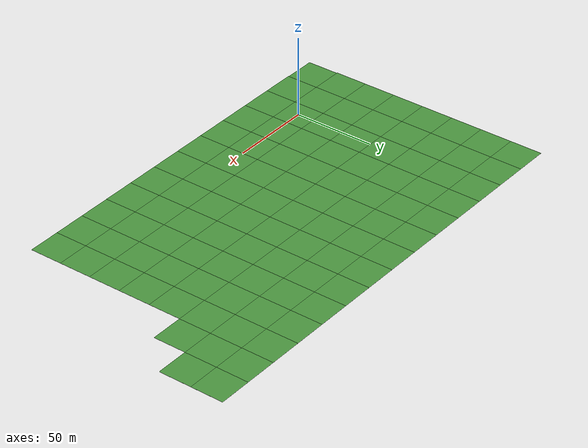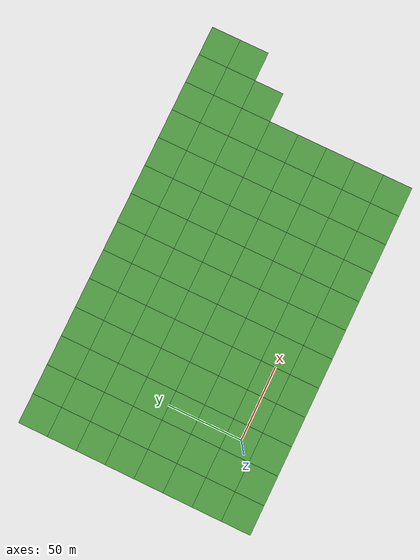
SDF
<?xml version='1.0'?>
<sdf version='1.4'>
  <model name='grass_plane'>
    <static>true</static>
    <link name='link'>
      <collision name='collision'>
        <geometry>
          <plane>
            <normal>0 0 1</normal>
            <size>500 500</size>
          </plane>
        </geometry>
        <surface>
          <friction>
            <ode>
              <mu>0.5</mu>
              <mu2>.5</mu2>
            </ode>
          </friction>
        </surface>
      </collision>

      <visual name='visual_6'>
        <pose>-40 -20 0 0 0 0</pose>

        <cast_shadows>false</cast_shadows>
        <geometry>
          <plane>
            <normal>0 0 1</normal>
            <size>20 20</size>
          </plane>
        </geometry>
        <material>
          <script>
            <uri>model://grass_plane/materials/scripts</uri>
            <uri>model://grass_plane/materials/textures</uri>
            <name>vrc/grass</name>
          </script>
        </material>
      </visual>

      <visual name='visual_7'>
        <pose>-20 -20 0 0 0 0</pose>

        <cast_shadows>false</cast_shadows>
        <geometry>
          <plane>
            <normal>0 0 1</normal>
            <size>20 20</size>
          </plane>
        </geometry>
        <material>
          <script>
            <uri>model://grass_plane/materials/scripts</uri>
            <uri>model://grass_plane/materials/textures</uri>
            <name>vrc/grass</name>
          </script>
        </material>
      </visual>

      <visual name='visual_8'>
        <pose>0 -20 0 0 0 0</pose>

        <cast_shadows>false</cast_shadows>
        <geometry>
          <plane>
            <normal>0 0 1</normal>
            <size>20 20</size>
          </plane>
        </geometry>
        <material>
          <script>
            <uri>model://grass_plane/materials/scripts</uri>
            <uri>model://grass_plane/materials/textures</uri>
            <name>vrc/grass</name>
          </script>
        </material>
      </visual>

      <visual name='visual_9'>
        <pose>20 -20 0 0 0 0</pose>

        <cast_shadows>false</cast_shadows>
        <geometry>
          <plane>
            <normal>0 0 1</normal>
            <size>20 20</size>
          </plane>
        </geometry>
        <material>
          <script>
            <uri>model://grass_plane/materials/scripts</uri>
            <uri>model://grass_plane/materials/textures</uri>
            <name>vrc/grass</name>
          </script>
        </material>
      </visual>

      <visual name='visual_10'>
        <pose>40 -20 0 0 0 0</pose>

        <cast_shadows>false</cast_shadows>
        <geometry>
          <plane>
            <normal>0 0 1</normal>
            <size>20 20</size>
          </plane>
        </geometry>
        <material>
          <script>
            <uri>model://grass_plane/materials/scripts</uri>
            <uri>model://grass_plane/materials/textures</uri>
            <name>vrc/grass</name>
          </script>
        </material>
      </visual>

      <visual name='visual_11'>
        <pose>60 -20 0 0 0 0</pose>

        <cast_shadows>false</cast_shadows>
        <geometry>
          <plane>
            <normal>0 0 1</normal>
            <size>20 20</size>
          </plane>
        </geometry>
        <material>
          <script>
            <uri>model://grass_plane/materials/scripts</uri>
            <uri>model://grass_plane/materials/textures</uri>
            <name>vrc/grass</name>
          </script>
        </material>
      </visual>

      <visual name='visual_12'>
        <pose>80 -20 0 0 0 0</pose>

        <cast_shadows>false</cast_shadows>
        <geometry>
          <plane>
            <normal>0 0 1</normal>
            <size>20 20</size>
          </plane>
        </geometry>
        <material>
          <script>
            <uri>model://grass_plane/materials/scripts</uri>
            <uri>model://grass_plane/materials/textures</uri>
            <name>vrc/grass</name>
          </script>
        </material>
      </visual>

      <visual name='visual_12_1'>
        <pose>100 -20 0 0 0 0</pose>

        <cast_shadows>false</cast_shadows>
        <geometry>
          <plane>
            <normal>0 0 1</normal>
            <size>20 20</size>
          </plane>
        </geometry>
        <material>
          <script>
            <uri>model://grass_plane/materials/scripts</uri>
            <uri>model://grass_plane/materials/textures</uri>
            <name>vrc/grass</name>
          </script>
        </material>
      </visual>

      <visual name='visual_12_2'>
        <pose>120 -20 0 0 0 0</pose>

        <cast_shadows>false</cast_shadows>
        <geometry>
          <plane>
            <normal>0 0 1</normal>
            <size>20 20</size>
          </plane>
        </geometry>
        <material>
          <script>
            <uri>model://grass_plane/materials/scripts</uri>
            <uri>model://grass_plane/materials/textures</uri>
            <name>vrc/grass</name>
          </script>
        </material>
      </visual>

      <visual name='visual_12_3'>
        <pose>140 -20 0 0 0 0</pose>

        <cast_shadows>false</cast_shadows>
        <geometry>
          <plane>
            <normal>0 0 1</normal>
            <size>20 20</size>
          </plane>
        </geometry>
        <material>
          <script>
            <uri>model://grass_plane/materials/scripts</uri>
            <uri>model://grass_plane/materials/textures</uri>
            <name>vrc/grass</name>
          </script>
        </material>
      </visual>

      <visual name='visual_12_4'>
        <pose>160 -20 0 0 0 0</pose>

        <cast_shadows>false</cast_shadows>
        <geometry>
          <plane>
            <normal>0 0 1</normal>
            <size>20 20</size>
          </plane>
        </geometry>
        <material>
          <script>
            <uri>model://grass_plane/materials/scripts</uri>
            <uri>model://grass_plane/materials/textures</uri>
            <name>vrc/grass</name>
          </script>
        </material>
      </visual>

      <visual name='visual_12_5'>
        <pose>180 -20 0 0 0 0</pose>

        <cast_shadows>false</cast_shadows>
        <geometry>
          <plane>
            <normal>0 0 1</normal>
            <size>20 20</size>
          </plane>
        </geometry>
        <material>
          <script>
            <uri>model://grass_plane/materials/scripts</uri>
            <uri>model://grass_plane/materials/textures</uri>
            <name>vrc/grass</name>
          </script>
        </material>
      </visual>

      <visual name='visual_13'>
        <pose>-40 0 0 0 0 0</pose>

        <cast_shadows>false</cast_shadows>
        <geometry>
          <plane>
            <normal>0 0 1</normal>
            <size>20 20</size>
          </plane>
        </geometry>
        <material>
          <script>
            <uri>model://grass_plane/materials/scripts</uri>
            <uri>model://grass_plane/materials/textures</uri>
            <name>vrc/grass</name>
          </script>
        </material>
      </visual>

      <visual name='visual_14'>
        <pose>-20 0 0 0 0 0</pose>

        <cast_shadows>false</cast_shadows>
        <geometry>
          <plane>
            <normal>0 0 1</normal>
            <size>20 20</size>
          </plane>
        </geometry>
        <material>
          <script>
            <uri>model://grass_plane/materials/scripts</uri>
            <uri>model://grass_plane/materials/textures</uri>
            <name>vrc/grass</name>
          </script>
        </material>
      </visual>

      <visual name='visual_15'>
        <pose>0 0 0 0 0 0</pose>

        <cast_shadows>false</cast_shadows>
        <geometry>
          <plane>
            <normal>0 0 1</normal>
            <size>20 20</size>
          </plane>
        </geometry>
        <material>
          <script>
            <uri>model://grass_plane/materials/scripts</uri>
            <uri>model://grass_plane/materials/textures</uri>
            <name>vrc/grass</name>
          </script>
        </material>
      </visual>

      <visual name='visual_16'>
        <pose>20 0 0 0 0 0</pose>

        <cast_shadows>false</cast_shadows>
        <geometry>
          <plane>
            <normal>0 0 1</normal>
            <size>20 20</size>
          </plane>
        </geometry>
        <material>
          <script>
            <uri>model://grass_plane/materials/scripts</uri>
            <uri>model://grass_plane/materials/textures</uri>
            <name>vrc/grass</name>
          </script>
        </material>
      </visual>

      <visual name='visual_17'>
        <pose>40 0 0 0 0 0</pose>

        <cast_shadows>false</cast_shadows>
        <geometry>
          <plane>
            <normal>0 0 1</normal>
            <size>20 20</size>
          </plane>
        </geometry>
        <material>
          <script>
            <uri>model://grass_plane/materials/scripts</uri>
            <uri>model://grass_plane/materials/textures</uri>
            <name>vrc/grass</name>
          </script>
        </material>
      </visual>

      <visual name='visual_18'>
        <pose>60 0 0 0 0 0</pose>

        <cast_shadows>false</cast_shadows>
        <geometry>
          <plane>
            <normal>0 0 1</normal>
            <size>20 20</size>
          </plane>
        </geometry>
        <material>
          <script>
            <uri>model://grass_plane/materials/scripts</uri>
            <uri>model://grass_plane/materials/textures</uri>
            <name>vrc/grass</name>
          </script>
        </material>
      </visual>

      <visual name='visual_19'>
        <pose>80 0 0 0 0 0</pose>

        <cast_shadows>false</cast_shadows>
        <geometry>
          <plane>
            <normal>0 0 1</normal>
            <size>20 20</size>
          </plane>
        </geometry>
        <material>
          <script>
            <uri>model://grass_plane/materials/scripts</uri>
            <uri>model://grass_plane/materials/textures</uri>
            <name>vrc/grass</name>
          </script>
        </material>
      </visual>

      <visual name='visual_20'>
        <pose>100 0 0 0 0 0</pose>

        <cast_shadows>false</cast_shadows>
        <geometry>
          <plane>
            <normal>0 0 1</normal>
            <size>20 20</size>
          </plane>
        </geometry>
        <material>
          <script>
            <uri>model://grass_plane/materials/scripts</uri>
            <uri>model://grass_plane/materials/textures</uri>
            <name>vrc/grass</name>
          </script>
        </material>
      </visual>

      <visual name='visual_21'>
        <pose>120 0 0 0 0 0</pose>

        <cast_shadows>false</cast_shadows>
        <geometry>
          <plane>
            <normal>0 0 1</normal>
            <size>20 20</size>
          </plane>
        </geometry>
        <material>
          <script>
            <uri>model://grass_plane/materials/scripts</uri>
            <uri>model://grass_plane/materials/textures</uri>
            <name>vrc/grass</name>
          </script>
        </material>
      </visual>

      <visual name='visual_21_2'>
        <pose>140 0 0 0 0 0</pose>

        <cast_shadows>false</cast_shadows>
        <geometry>
          <plane>
            <normal>0 0 1</normal>
            <size>20 20</size>
          </plane>
        </geometry>
        <material>
          <script>
            <uri>model://grass_plane/materials/scripts</uri>
            <uri>model://grass_plane/materials/textures</uri>
            <name>vrc/grass</name>
          </script>
        </material>
      </visual>

      <visual name='visual_21_3'>
        <pose>160 0 0 0 0 0</pose>

        <cast_shadows>false</cast_shadows>
        <geometry>
          <plane>
            <normal>0 0 1</normal>
            <size>20 20</size>
          </plane>
        </geometry>
        <material>
          <script>
            <uri>model://grass_plane/materials/scripts</uri>
            <uri>model://grass_plane/materials/textures</uri>
            <name>vrc/grass</name>
          </script>
        </material>
      </visual>

      <visual name='visual_21_4'>
        <pose>180 0 0 0 0 0</pose>

        <cast_shadows>false</cast_shadows>
        <geometry>
          <plane>
            <normal>0 0 1</normal>
            <size>20 20</size>
          </plane>
        </geometry>
        <material>
          <script>
            <uri>model://grass_plane/materials/scripts</uri>
            <uri>model://grass_plane/materials/textures</uri>
            <name>vrc/grass</name>
          </script>
        </material>
      </visual>

      <visual name='visual_22'>
        <pose>-40 20 0 0 0 0</pose>

        <cast_shadows>false</cast_shadows>
        <geometry>
          <plane>
            <normal>0 0 1</normal>
            <size>20 20</size>
          </plane>
        </geometry>
        <material>
          <script>
            <uri>model://grass_plane/materials/scripts</uri>
            <uri>model://grass_plane/materials/textures</uri>
            <name>vrc/grass</name>
          </script>
        </material>
      </visual>

      <visual name='visual_23'>
        <pose>-20 20 0 0 0 0</pose>

        <cast_shadows>false</cast_shadows>
        <geometry>
          <plane>
            <normal>0 0 1</normal>
            <size>20 20</size>
          </plane>
        </geometry>
        <material>
          <script>
            <uri>model://grass_plane/materials/scripts</uri>
            <uri>model://grass_plane/materials/textures</uri>
            <name>vrc/grass</name>
          </script>
        </material>
      </visual>

      <visual name='visual_24'>
        <pose>0 20 0 0 0 0</pose>

        <cast_shadows>false</cast_shadows>
        <geometry>
          <plane>
            <normal>0 0 1</normal>
            <size>20 20</size>
          </plane>
        </geometry>
        <material>
          <script>
            <uri>model://grass_plane/materials/scripts</uri>
            <uri>model://grass_plane/materials/textures</uri>
            <name>vrc/grass</name>
          </script>
        </material>
      </visual>

      <visual name='visual_25'>
        <pose>20 20 0 0 0 0</pose>

        <cast_shadows>false</cast_shadows>
        <geometry>
          <plane>
            <normal>0 0 1</normal>
            <size>20 20</size>
          </plane>
        </geometry>
        <material>
          <script>
            <uri>model://grass_plane/materials/scripts</uri>
            <uri>model://grass_plane/materials/textures</uri>
            <name>vrc/grass</name>
          </script>
        </material>
      </visual>

      <visual name='visual_26'>
        <pose>40 20 0 0 0 0</pose>

        <cast_shadows>false</cast_shadows>
        <geometry>
          <plane>
            <normal>0 0 1</normal>
            <size>20 20</size>
          </plane>
        </geometry>
        <material>
          <script>
            <uri>model://grass_plane/materials/scripts</uri>
            <uri>model://grass_plane/materials/textures</uri>
            <name>vrc/grass</name>
          </script>
        </material>
      </visual>

      <visual name='visual_27'>
        <pose>60 20 0 0 0 0</pose>

        <cast_shadows>false</cast_shadows>
        <geometry>
          <plane>
            <normal>0 0 1</normal>
            <size>20 20</size>
          </plane>
        </geometry>
        <material>
          <script>
            <uri>model://grass_plane/materials/scripts</uri>
            <uri>model://grass_plane/materials/textures</uri>
            <name>vrc/grass</name>
          </script>
        </material>
      </visual>

      <visual name='visual_28'>
        <pose>80 20 0 0 0 0</pose>

        <cast_shadows>false</cast_shadows>
        <geometry>
          <plane>
            <normal>0 0 1</normal>
            <size>20 20</size>
          </plane>
        </geometry>
        <material>
          <script>
            <uri>model://grass_plane/materials/scripts</uri>
            <uri>model://grass_plane/materials/textures</uri>
            <name>vrc/grass</name>
          </script>
        </material>
      </visual>

      <visual name='visual_29'>
        <pose>100 20 0 0 0 0</pose>

        <cast_shadows>false</cast_shadows>
        <geometry>
          <plane>
            <normal>0 0 1</normal>
            <size>20 20</size>
          </plane>
        </geometry>
        <material>
          <script>
            <uri>model://grass_plane/materials/scripts</uri>
            <uri>model://grass_plane/materials/textures</uri>
            <name>vrc/grass</name>
          </script>
        </material>
      </visual>

      <visual name='visual_30'>
        <pose>120 20 0 0 0 0</pose>

        <cast_shadows>false</cast_shadows>
        <geometry>
          <plane>
            <normal>0 0 1</normal>
            <size>20 20</size>
          </plane>
        </geometry>
        <material>
          <script>
            <uri>model://grass_plane/materials/scripts</uri>
            <uri>model://grass_plane/materials/textures</uri>
            <name>vrc/grass</name>
          </script>
        </material>
      </visual>

      <visual name='visual_31'>
        <pose>140 20 0 0 0 0</pose>

        <cast_shadows>false</cast_shadows>
        <geometry>
          <plane>
            <normal>0 0 1</normal>
            <size>20 20</size>
          </plane>
        </geometry>
        <material>
          <script>
            <uri>model://grass_plane/materials/scripts</uri>
            <uri>model://grass_plane/materials/textures</uri>
            <name>vrc/grass</name>
          </script>
        </material>
      </visual>

      <visual name='visual_31_2'>
        <pose>160 20 0 0 0 0</pose>

        <cast_shadows>false</cast_shadows>
        <geometry>
          <plane>
            <normal>0 0 1</normal>
            <size>20 20</size>
          </plane>
        </geometry>
        <material>
          <script>
            <uri>model://grass_plane/materials/scripts</uri>
            <uri>model://grass_plane/materials/textures</uri>
            <name>vrc/grass</name>
          </script>
        </material>
      </visual>

      <visual name='visual_31_3'>
        <pose>180 20 0 0 0 0</pose>

        <cast_shadows>false</cast_shadows>
        <geometry>
          <plane>
            <normal>0 0 1</normal>
            <size>20 20</size>
          </plane>
        </geometry>
        <material>
          <script>
            <uri>model://grass_plane/materials/scripts</uri>
            <uri>model://grass_plane/materials/textures</uri>
            <name>vrc/grass</name>
          </script>
        </material>
      </visual>

      <visual name='visual_32_1'>
        <pose>-40 40 0 0 0 0</pose>

        <cast_shadows>false</cast_shadows>
        <geometry>
          <plane>
            <normal>0 0 1</normal>
            <size>20 20</size>
          </plane>
        </geometry>
        <material>
          <script>
            <uri>model://grass_plane/materials/scripts</uri>
            <uri>model://grass_plane/materials/textures</uri>
            <name>vrc/grass</name>
          </script>
        </material>
      </visual>

      <visual name='visual_32_2'>
        <pose>-20 40 0 0 0 0</pose>

        <cast_shadows>false</cast_shadows>
        <geometry>
          <plane>
            <normal>0 0 1</normal>
            <size>20 20</size>
          </plane>
        </geometry>
        <material>
          <script>
            <uri>model://grass_plane/materials/scripts</uri>
            <uri>model://grass_plane/materials/textures</uri>
            <name>vrc/grass</name>
          </script>
        </material>
      </visual>

      <visual name='visual_32_3'>
        <pose>0 40 0 0 0 0</pose>

        <cast_shadows>false</cast_shadows>
        <geometry>
          <plane>
            <normal>0 0 1</normal>
            <size>20 20</size>
          </plane>
        </geometry>
        <material>
          <script>
            <uri>model://grass_plane/materials/scripts</uri>
            <uri>model://grass_plane/materials/textures</uri>
            <name>vrc/grass</name>
          </script>
        </material>
      </visual>

      <visual name='visual_32_4'>
        <pose>20 40 0 0 0 0</pose>

        <cast_shadows>false</cast_shadows>
        <geometry>
          <plane>
            <normal>0 0 1</normal>
            <size>20 20</size>
          </plane>
        </geometry>
        <material>
          <script>
            <uri>model://grass_plane/materials/scripts</uri>
            <uri>model://grass_plane/materials/textures</uri>
            <name>vrc/grass</name>
          </script>
        </material>
      </visual>

      <visual name='visual_32'>
        <pose>40 40 0 0 0 0</pose>

        <cast_shadows>false</cast_shadows>
        <geometry>
          <plane>
            <normal>0 0 1</normal>
            <size>20 20</size>
          </plane>
        </geometry>
        <material>
          <script>
            <uri>model://grass_plane/materials/scripts</uri>
            <uri>model://grass_plane/materials/textures</uri>
            <name>vrc/grass</name>
          </script>
        </material>
      </visual>

      <visual name='visual_33'>
        <pose>60 40 0 0 0 0</pose>

        <cast_shadows>false</cast_shadows>
        <geometry>
          <plane>
            <normal>0 0 1</normal>
            <size>20 20</size>
          </plane>
        </geometry>
        <material>
          <script>
            <uri>model://grass_plane/materials/scripts</uri>
            <uri>model://grass_plane/materials/textures</uri>
            <name>vrc/grass</name>
          </script>
        </material>
      </visual>

      <visual name='visual_34'>
        <pose>80 40 0 0 0 0</pose>

        <cast_shadows>false</cast_shadows>
        <geometry>
          <plane>
            <normal>0 0 1</normal>
            <size>20 20</size>
          </plane>
        </geometry>
        <material>
          <script>
            <uri>model://grass_plane/materials/scripts</uri>
            <uri>model://grass_plane/materials/textures</uri>
            <name>vrc/grass</name>
          </script>
        </material>
      </visual>

      <visual name='visual_35'>
        <pose>100 40 0 0 0 0</pose>

        <cast_shadows>false</cast_shadows>
        <geometry>
          <plane>
            <normal>0 0 1</normal>
            <size>20 20</size>
          </plane>
        </geometry>
        <material>
          <script>
            <uri>model://grass_plane/materials/scripts</uri>
            <uri>model://grass_plane/materials/textures</uri>
            <name>vrc/grass</name>
          </script>
        </material>
      </visual>

      <visual name='visual_36'>
        <pose>120 40 0 0 0 0</pose>

        <cast_shadows>false</cast_shadows>
        <geometry>
          <plane>
            <normal>0 0 1</normal>
            <size>20 20</size>
          </plane>
        </geometry>
        <material>
          <script>
            <uri>model://grass_plane/materials/scripts</uri>
            <uri>model://grass_plane/materials/textures</uri>
            <name>vrc/grass</name>
          </script>
        </material>
      </visual>

      <visual name='visual_37'>
        <pose>140 40 0 0 0 0</pose>

        <cast_shadows>false</cast_shadows>
        <geometry>
          <plane>
            <normal>0 0 1</normal>
            <size>20 20</size>
          </plane>
        </geometry>
        <material>
          <script>
            <uri>model://grass_plane/materials/scripts</uri>
            <uri>model://grass_plane/materials/textures</uri>
            <name>vrc/grass</name>
          </script>
        </material>
      </visual>

      <visual name='visual_38'>
        <pose>160 40 0 0 0 0</pose>

        <cast_shadows>false</cast_shadows>
        <geometry>
          <plane>
            <normal>0 0 1</normal>
            <size>20 20</size>
          </plane>
        </geometry>
        <material>
          <script>
            <uri>model://grass_plane/materials/scripts</uri>
            <uri>model://grass_plane/materials/textures</uri>
            <name>vrc/grass</name>
          </script>
        </material>
      </visual>

      <visual name='visual_38_2'>
        <pose>180 40 0 0 0 0</pose>

        <cast_shadows>false</cast_shadows>
        <geometry>
          <plane>
            <normal>0 0 1</normal>
            <size>20 20</size>
          </plane>
        </geometry>
        <material>
          <script>
            <uri>model://grass_plane/materials/scripts</uri>
            <uri>model://grass_plane/materials/textures</uri>
            <name>vrc/grass</name>
          </script>
        </material>
      </visual>

      <visual name='visual_38_3'>
        <pose>-40 60 0 0 0 0</pose>

        <cast_shadows>false</cast_shadows>
        <geometry>
          <plane>
            <normal>0 0 1</normal>
            <size>20 20</size>
          </plane>
        </geometry>
        <material>
          <script>
            <uri>model://grass_plane/materials/scripts</uri>
            <uri>model://grass_plane/materials/textures</uri>
            <name>vrc/grass</name>
          </script>
        </material>
      </visual>

      <visual name='visual_38_4'>
        <pose>-20 60 0 0 0 0</pose>

        <cast_shadows>false</cast_shadows>
        <geometry>
          <plane>
            <normal>0 0 1</normal>
            <size>20 20</size>
          </plane>
        </geometry>
        <material>
          <script>
            <uri>model://grass_plane/materials/scripts</uri>
            <uri>model://grass_plane/materials/textures</uri>
            <name>vrc/grass</name>
          </script>
        </material>
      </visual>

      <visual name='visual_38_5'>
        <pose>0 60 0 0 0 0</pose>

        <cast_shadows>false</cast_shadows>
        <geometry>
          <plane>
            <normal>0 0 1</normal>
            <size>20 20</size>
          </plane>
        </geometry>
        <material>
          <script>
            <uri>model://grass_plane/materials/scripts</uri>
            <uri>model://grass_plane/materials/textures</uri>
            <name>vrc/grass</name>
          </script>
        </material>
      </visual>

      <visual name='visual_38_6'>
        <pose>20 60 0 0 0 0</pose>

        <cast_shadows>false</cast_shadows>
        <geometry>
          <plane>
            <normal>0 0 1</normal>
            <size>20 20</size>
          </plane>
        </geometry>
        <material>
          <script>
            <uri>model://grass_plane/materials/scripts</uri>
            <uri>model://grass_plane/materials/textures</uri>
            <name>vrc/grass</name>
          </script>
        </material>
      </visual>

      <visual name='visual_39'>
        <pose>40 60 0 0 0 0</pose>

        <cast_shadows>false</cast_shadows>
        <geometry>
          <plane>
            <normal>0 0 1</normal>
            <size>20 20</size>
          </plane>
        </geometry>
        <material>
          <script>
            <uri>model://grass_plane/materials/scripts</uri>
            <uri>model://grass_plane/materials/textures</uri>
            <name>vrc/grass</name>
          </script>
        </material>
      </visual>

      <visual name='visual_40'>
        <pose>60 60 0 0 0 0</pose>

        <cast_shadows>false</cast_shadows>
        <geometry>
          <plane>
            <normal>0 0 1</normal>
            <size>20 20</size>
          </plane>
        </geometry>
        <material>
          <script>
            <uri>model://grass_plane/materials/scripts</uri>
            <uri>model://grass_plane/materials/textures</uri>
            <name>vrc/grass</name>
          </script>
        </material>
      </visual>

      <visual name='visual_41'>
        <pose>80 60 0 0 0 0</pose>

        <cast_shadows>false</cast_shadows>
        <geometry>
          <plane>
            <normal>0 0 1</normal>
            <size>20 20</size>
          </plane>
        </geometry>
        <material>
          <script>
            <uri>model://grass_plane/materials/scripts</uri>
            <uri>model://grass_plane/materials/textures</uri>
            <name>vrc/grass</name>
          </script>
        </material>
      </visual>

      <visual name='visual_42'>
        <pose>100 60 0 0 0 0</pose>

        <cast_shadows>false</cast_shadows>
        <geometry>
          <plane>
            <normal>0 0 1</normal>
            <size>20 20</size>
          </plane>
        </geometry>
        <material>
          <script>
            <uri>model://grass_plane/materials/scripts</uri>
            <uri>model://grass_plane/materials/textures</uri>
            <name>vrc/grass</name>
          </script>
        </material>
      </visual>

      <visual name='visual_43'>
        <pose>120 60 0 0 0 0</pose>

        <cast_shadows>false</cast_shadows>
        <geometry>
          <plane>
            <normal>0 0 1</normal>
            <size>20 20</size>
          </plane>
        </geometry>
        <material>
          <script>
            <uri>model://grass_plane/materials/scripts</uri>
            <uri>model://grass_plane/materials/textures</uri>
            <name>vrc/grass</name>
          </script>
        </material>
      </visual>

      <visual name='visual_44'>
        <pose>140 60 0 0 0 0</pose>

        <cast_shadows>false</cast_shadows>
        <geometry>
          <plane>
            <normal>0 0 1</normal>
            <size>20 20</size>
          </plane>
        </geometry>
        <material>
          <script>
            <uri>model://grass_plane/materials/scripts</uri>
            <uri>model://grass_plane/materials/textures</uri>
            <name>vrc/grass</name>
          </script>
        </material>
      </visual>

      <visual name='visual_45'>
        <pose>160 60 0 0 0 0</pose>

        <cast_shadows>false</cast_shadows>
        <geometry>
          <plane>
            <normal>0 0 1</normal>
            <size>20 20</size>
          </plane>
        </geometry>
        <material>
          <script>
            <uri>model://grass_plane/materials/scripts</uri>
            <uri>model://grass_plane/materials/textures</uri>
            <name>vrc/grass</name>
          </script>
        </material>
      </visual>

      <visual name='visual_45_2'>
        <pose>180 60 0 0 0 0</pose>

        <cast_shadows>false</cast_shadows>
        <geometry>
          <plane>
            <normal>0 0 1</normal>
            <size>20 20</size>
          </plane>
        </geometry>
        <material>
          <script>
            <uri>model://grass_plane/materials/scripts</uri>
            <uri>model://grass_plane/materials/textures</uri>
            <name>vrc/grass</name>
          </script>
        </material>
      </visual>

      <visual name='visual_45_3'>
        <pose>-40 80 0 0 0 0</pose>

        <cast_shadows>false</cast_shadows>
        <geometry>
          <plane>
            <normal>0 0 1</normal>
            <size>20 20</size>
          </plane>
        </geometry>
        <material>
          <script>
            <uri>model://grass_plane/materials/scripts</uri>
            <uri>model://grass_plane/materials/textures</uri>
            <name>vrc/grass</name>
          </script>
        </material>
      </visual>

      <visual name='visual_45_4'>
        <pose>-20 80 0 0 0 0</pose>

        <cast_shadows>false</cast_shadows>
        <geometry>
          <plane>
            <normal>0 0 1</normal>
            <size>20 20</size>
          </plane>
        </geometry>
        <material>
          <script>
            <uri>model://grass_plane/materials/scripts</uri>
            <uri>model://grass_plane/materials/textures</uri>
            <name>vrc/grass</name>
          </script>
        </material>
      </visual>

      <visual name='visual_45_5'>
        <pose>0 80 0 0 0 0</pose>

        <cast_shadows>false</cast_shadows>
        <geometry>
          <plane>
            <normal>0 0 1</normal>
            <size>20 20</size>
          </plane>
        </geometry>
        <material>
          <script>
            <uri>model://grass_plane/materials/scripts</uri>
            <uri>model://grass_plane/materials/textures</uri>
            <name>vrc/grass</name>
          </script>
        </material>
      </visual>

      <visual name='visual_45_6'>
        <pose>20 80 0 0 0 0</pose>

        <cast_shadows>false</cast_shadows>
        <geometry>
          <plane>
            <normal>0 0 1</normal>
            <size>20 20</size>
          </plane>
        </geometry>
        <material>
          <script>
            <uri>model://grass_plane/materials/scripts</uri>
            <uri>model://grass_plane/materials/textures</uri>
            <name>vrc/grass</name>
          </script>
        </material>
      </visual>

      <visual name='visual_46'>
        <pose>40 80 0 0 0 0</pose>

        <cast_shadows>false</cast_shadows>
        <geometry>
          <plane>
            <normal>0 0 1</normal>
            <size>20 20</size>
          </plane>
        </geometry>
        <material>
          <script>
            <uri>model://grass_plane/materials/scripts</uri>
            <uri>model://grass_plane/materials/textures</uri>
            <name>vrc/grass</name>
          </script>
        </material>
      </visual>

      <visual name='visual_47'>
        <pose>60 80 0 0 0 0</pose>

        <cast_shadows>false</cast_shadows>
        <geometry>
          <plane>
            <normal>0 0 1</normal>
            <size>20 20</size>
          </plane>
        </geometry>
        <material>
          <script>
            <uri>model://grass_plane/materials/scripts</uri>
            <uri>model://grass_plane/materials/textures</uri>
            <name>vrc/grass</name>
          </script>
        </material>
      </visual>

      <visual name='visual_48'>
        <pose>80 80 0 0 0 0</pose>

        <cast_shadows>false</cast_shadows>
        <geometry>
          <plane>
            <normal>0 0 1</normal>
            <size>20 20</size>
          </plane>
        </geometry>
        <material>
          <script>
            <uri>model://grass_plane/materials/scripts</uri>
            <uri>model://grass_plane/materials/textures</uri>
            <name>vrc/grass</name>
          </script>
        </material>
      </visual>

      <visual name='visual_49'>
        <pose>100 80 0 0 0 0</pose>

        <cast_shadows>false</cast_shadows>
        <geometry>
          <plane>
            <normal>0 0 1</normal>
            <size>20 20</size>
          </plane>
        </geometry>
        <material>
          <script>
            <uri>model://grass_plane/materials/scripts</uri>
            <uri>model://grass_plane/materials/textures</uri>
            <name>vrc/grass</name>
          </script>
        </material>
      </visual>

      <visual name='visual_50'>
        <pose>120 80 0 0 0 0</pose>

        <cast_shadows>false</cast_shadows>
        <geometry>
          <plane>
            <normal>0 0 1</normal>
            <size>20 20</size>
          </plane>
        </geometry>
        <material>
          <script>
            <uri>model://grass_plane/materials/scripts</uri>
            <uri>model://grass_plane/materials/textures</uri>
            <name>vrc/grass</name>
          </script>
        </material>
      </visual>

      <visual name='visual_51'>
        <pose>140 80 0 0 0 0</pose>

        <cast_shadows>false</cast_shadows>
        <geometry>
          <plane>
            <normal>0 0 1</normal>
            <size>20 20</size>
          </plane>
        </geometry>
        <material>
          <script>
            <uri>model://grass_plane/materials/scripts</uri>
            <uri>model://grass_plane/materials/textures</uri>
            <name>vrc/grass</name>
          </script>
        </material>
      </visual>

      <visual name='visual_52'>
        <pose>160 80 0 0 0 0</pose>

        <cast_shadows>false</cast_shadows>
        <geometry>
          <plane>
            <normal>0 0 1</normal>
            <size>20 20</size>
          </plane>
        </geometry>
        <material>
          <script>
            <uri>model://grass_plane/materials/scripts</uri>
            <uri>model://grass_plane/materials/textures</uri>
            <name>vrc/grass</name>
          </script>
        </material>
      </visual>

      <visual name='visual_53'>
        <pose>180 80 0 0 0 0</pose>

        <cast_shadows>false</cast_shadows>
        <geometry>
          <plane>
            <normal>0 0 1</normal>
            <size>20 20</size>
          </plane>
        </geometry>
        <material>
          <script>
            <uri>model://grass_plane/materials/scripts</uri>
            <uri>model://grass_plane/materials/textures</uri>
            <name>vrc/grass</name>
          </script>
        </material>
      </visual>

      <visual name='visual_54'>
        <pose>200 80 0 0 0 0</pose>

        <cast_shadows>false</cast_shadows>
        <geometry>
          <plane>
            <normal>0 0 1</normal>
            <size>20 20</size>
          </plane>
        </geometry>
        <material>
          <script>
            <uri>model://grass_plane/materials/scripts</uri>
            <uri>model://grass_plane/materials/textures</uri>
            <name>vrc/grass</name>
          </script>
        </material>
      </visual>

      <visual name='visual_54_1'>
        <pose>-40 100 0 0 0 0</pose>

        <cast_shadows>false</cast_shadows>
        <geometry>
          <plane>
            <normal>0 0 1</normal>
            <size>20 20</size>
          </plane>
        </geometry>
        <material>
          <script>
            <uri>model://grass_plane/materials/scripts</uri>
            <uri>model://grass_plane/materials/textures</uri>
            <name>vrc/grass</name>
          </script>
        </material>
      </visual>

      <visual name='visual_54_2'>
        <pose>-20 100 0 0 0 0</pose>

        <cast_shadows>false</cast_shadows>
        <geometry>
          <plane>
            <normal>0 0 1</normal>
            <size>20 20</size>
          </plane>
        </geometry>
        <material>
          <script>
            <uri>model://grass_plane/materials/scripts</uri>
            <uri>model://grass_plane/materials/textures</uri>
            <name>vrc/grass</name>
          </script>
        </material>
      </visual>

      <visual name='visual_54_3'>
        <pose>0 100 0 0 0 0</pose>

        <cast_shadows>false</cast_shadows>
        <geometry>
          <plane>
            <normal>0 0 1</normal>
            <size>20 20</size>
          </plane>
        </geometry>
        <material>
          <script>
            <uri>model://grass_plane/materials/scripts</uri>
            <uri>model://grass_plane/materials/textures</uri>
            <name>vrc/grass</name>
          </script>
        </material>
      </visual>

      <visual name='visual_54_4'>
        <pose>20 100 0 0 0 0</pose>

        <cast_shadows>false</cast_shadows>
        <geometry>
          <plane>
            <normal>0 0 1</normal>
            <size>20 20</size>
          </plane>
        </geometry>
        <material>
          <script>
            <uri>model://grass_plane/materials/scripts</uri>
            <uri>model://grass_plane/materials/textures</uri>
            <name>vrc/grass</name>
          </script>
        </material>
      </visual>

      <visual name='visual_55'>
        <pose>40 100 0 0 0 0</pose>

        <cast_shadows>false</cast_shadows>
        <geometry>
          <plane>
            <normal>0 0 1</normal>
            <size>20 20</size>
          </plane>
        </geometry>
        <material>
          <script>
            <uri>model://grass_plane/materials/scripts</uri>
            <uri>model://grass_plane/materials/textures</uri>
            <name>vrc/grass</name>
          </script>
        </material>
      </visual>

      <visual name='visual_56'>
        <pose>60 100 0 0 0 0</pose>

        <cast_shadows>false</cast_shadows>
        <geometry>
          <plane>
            <normal>0 0 1</normal>
            <size>20 20</size>
          </plane>
        </geometry>
        <material>
          <script>
            <uri>model://grass_plane/materials/scripts</uri>
            <uri>model://grass_plane/materials/textures</uri>
            <name>vrc/grass</name>
          </script>
        </material>
      </visual>

      <visual name='visual_57'>
        <pose>80 100 0 0 0 0</pose>

        <cast_shadows>false</cast_shadows>
        <geometry>
          <plane>
            <normal>0 0 1</normal>
            <size>20 20</size>
          </plane>
        </geometry>
        <material>
          <script>
            <uri>model://grass_plane/materials/scripts</uri>
            <uri>model://grass_plane/materials/textures</uri>
            <name>vrc/grass</name>
          </script>
        </material>
      </visual>

      <visual name='visual_58'>
        <pose>100 100 0 0 0 0</pose>

        <cast_shadows>false</cast_shadows>
        <geometry>
          <plane>
            <normal>0 0 1</normal>
            <size>20 20</size>
          </plane>
        </geometry>
        <material>
          <script>
            <uri>model://grass_plane/materials/scripts</uri>
            <uri>model://grass_plane/materials/textures</uri>
            <name>vrc/grass</name>
          </script>
        </material>
      </visual>

      <visual name='visual_59'>
        <pose>120 100 0 0 0 0</pose>

        <cast_shadows>false</cast_shadows>
        <geometry>
          <plane>
            <normal>0 0 1</normal>
            <size>20 20</size>
          </plane>
        </geometry>
        <material>
          <script>
            <uri>model://grass_plane/materials/scripts</uri>
            <uri>model://grass_plane/materials/textures</uri>
            <name>vrc/grass</name>
          </script>
        </material>
      </visual>

      <visual name='visual_60'>
        <pose>140 100 0 0 0 0</pose>

        <cast_shadows>false</cast_shadows>
        <geometry>
          <plane>
            <normal>0 0 1</normal>
            <size>20 20</size>
          </plane>
        </geometry>
        <material>
          <script>
            <uri>model://grass_plane/materials/scripts</uri>
            <uri>model://grass_plane/materials/textures</uri>
            <name>vrc/grass</name>
          </script>
        </material>
      </visual>

      <visual name='visual_61'>
        <pose>160 100 0 0 0 0</pose>

        <cast_shadows>false</cast_shadows>
        <geometry>
          <plane>
            <normal>0 0 1</normal>
            <size>20 20</size>
          </plane>
        </geometry>
        <material>
          <script>
            <uri>model://grass_plane/materials/scripts</uri>
            <uri>model://grass_plane/materials/textures</uri>
            <name>vrc/grass</name>
          </script>
        </material>
      </visual>

      <visual name='visual_62'>
        <pose>180 100 0 0 0 0</pose>

        <cast_shadows>false</cast_shadows>
        <geometry>
          <plane>
            <normal>0 0 1</normal>
            <size>20 20</size>
          </plane>
        </geometry>
        <material>
          <script>
            <uri>model://grass_plane/materials/scripts</uri>
            <uri>model://grass_plane/materials/textures</uri>
            <name>vrc/grass</name>
          </script>
        </material>
      </visual>

      <visual name='visual_63'>
        <pose>200 100 0 0 0 0</pose>

        <cast_shadows>false</cast_shadows>
        <geometry>
          <plane>
            <normal>0 0 1</normal>
            <size>20 20</size>
          </plane>
        </geometry>
        <material>
          <script>
            <uri>model://grass_plane/materials/scripts</uri>
            <uri>model://grass_plane/materials/textures</uri>
            <name>vrc/grass</name>
          </script>
        </material>
      </visual>

      <visual name='visual_63a'>
        <pose>220 100 0 0 0 0</pose>

        <cast_shadows>false</cast_shadows>
        <geometry>
          <plane>
            <normal>0 0 1</normal>
            <size>20 20</size>
          </plane>
        </geometry>
        <material>
          <script>
            <uri>model://grass_plane/materials/scripts</uri>
            <uri>model://grass_plane/materials/textures</uri>
            <name>vrc/grass</name>
          </script>
        </material>
      </visual>

      <visual name='visual_63_1'>
        <pose>-40 120 0 0 0 0</pose>

        <cast_shadows>false</cast_shadows>
        <geometry>
          <plane>
            <normal>0 0 1</normal>
            <size>20 20</size>
          </plane>
        </geometry>
        <material>
          <script>
            <uri>model://grass_plane/materials/scripts</uri>
            <uri>model://grass_plane/materials/textures</uri>
            <name>vrc/grass</name>
          </script>
        </material>
      </visual>

      <visual name='visual_63_2'>
        <pose>-20 120 0 0 0 0</pose>

        <cast_shadows>false</cast_shadows>
        <geometry>
          <plane>
            <normal>0 0 1</normal>
            <size>20 20</size>
          </plane>
        </geometry>
        <material>
          <script>
            <uri>model://grass_plane/materials/scripts</uri>
            <uri>model://grass_plane/materials/textures</uri>
            <name>vrc/grass</name>
          </script>
        </material>
      </visual>

      <visual name='visual_63_3'>
        <pose>0 120 0 0 0 0</pose>

        <cast_shadows>false</cast_shadows>
        <geometry>
          <plane>
            <normal>0 0 1</normal>
            <size>20 20</size>
          </plane>
        </geometry>
        <material>
          <script>
            <uri>model://grass_plane/materials/scripts</uri>
            <uri>model://grass_plane/materials/textures</uri>
            <name>vrc/grass</name>
          </script>
        </material>
      </visual>

      <visual name='visual_63_4'>
        <pose>20 120 0 0 0 0</pose>

        <cast_shadows>false</cast_shadows>
        <geometry>
          <plane>
            <normal>0 0 1</normal>
            <size>20 20</size>
          </plane>
        </geometry>
        <material>
          <script>
            <uri>model://grass_plane/materials/scripts</uri>
            <uri>model://grass_plane/materials/textures</uri>
            <name>vrc/grass</name>
          </script>
        </material>
      </visual>

      <visual name='visual_64'>
        <pose>40 120 0 0 0 0</pose>

        <cast_shadows>false</cast_shadows>
        <geometry>
          <plane>
            <normal>0 0 1</normal>
            <size>20 20</size>
          </plane>
        </geometry>
        <material>
          <script>
            <uri>model://grass_plane/materials/scripts</uri>
            <uri>model://grass_plane/materials/textures</uri>
            <name>vrc/grass</name>
          </script>
        </material>
      </visual>

      <visual name='visual_65'>
        <pose>60 120 0 0 0 0</pose>

        <cast_shadows>false</cast_shadows>
        <geometry>
          <plane>
            <normal>0 0 1</normal>
            <size>20 20</size>
          </plane>
        </geometry>
        <material>
          <script>
            <uri>model://grass_plane/materials/scripts</uri>
            <uri>model://grass_plane/materials/textures</uri>
            <name>vrc/grass</name>
          </script>
        </material>
      </visual>

      <visual name='visual_66'>
        <pose>80 120 0 0 0 0</pose>

        <cast_shadows>false</cast_shadows>
        <geometry>
          <plane>
            <normal>0 0 1</normal>
            <size>20 20</size>
          </plane>
        </geometry>
        <material>
          <script>
            <uri>model://grass_plane/materials/scripts</uri>
            <uri>model://grass_plane/materials/textures</uri>
            <name>vrc/grass</name>
          </script>
        </material>
      </visual>

      <visual name='visual_67'>
        <pose>100 120 0 0 0 0</pose>

        <cast_shadows>false</cast_shadows>
        <geometry>
          <plane>
            <normal>0 0 1</normal>
            <size>20 20</size>
          </plane>
        </geometry>
        <material>
          <script>
            <uri>model://grass_plane/materials/scripts</uri>
            <uri>model://grass_plane/materials/textures</uri>
            <name>vrc/grass</name>
          </script>
        </material>
      </visual>

      <visual name='visual_68'>
        <pose>120 120 0 0 0 0</pose>

        <cast_shadows>false</cast_shadows>
        <geometry>
          <plane>
            <normal>0 0 1</normal>
            <size>20 20</size>
          </plane>
        </geometry>
        <material>
          <script>
            <uri>model://grass_plane/materials/scripts</uri>
            <uri>model://grass_plane/materials/textures</uri>
            <name>vrc/grass</name>
          </script>
        </material>
      </visual>

      <visual name='visual_69'>
        <pose>140 120 0 0 0 0</pose>

        <cast_shadows>false</cast_shadows>
        <geometry>
          <plane>
            <normal>0 0 1</normal>
            <size>20 20</size>
          </plane>
        </geometry>
        <material>
          <script>
            <uri>model://grass_plane/materials/scripts</uri>
            <uri>model://grass_plane/materials/textures</uri>
            <name>vrc/grass</name>
          </script>
        </material>
      </visual>

      <visual name='visual_70'>
        <pose>160 120 0 0 0 0</pose>

        <cast_shadows>false</cast_shadows>
        <geometry>
          <plane>
            <normal>0 0 1</normal>
            <size>20 20</size>
          </plane>
        </geometry>
        <material>
          <script>
            <uri>model://grass_plane/materials/scripts</uri>
            <uri>model://grass_plane/materials/textures</uri>
            <name>vrc/grass</name>
          </script>
        </material>
      </visual>

      <visual name='visual_71'>
        <pose>180 120 0 0 0 0</pose>

        <cast_shadows>false</cast_shadows>
        <geometry>
          <plane>
            <normal>0 0 1</normal>
            <size>20 20</size>
          </plane>
        </geometry>
        <material>
          <script>
            <uri>model://grass_plane/materials/scripts</uri>
            <uri>model://grass_plane/materials/textures</uri>
            <name>vrc/grass</name>
          </script>
        </material>
      </visual>

      <visual name='visual_72'>
        <pose>200 120 0 0 0 0</pose>

        <cast_shadows>false</cast_shadows>
        <geometry>
          <plane>
            <normal>0 0 1</normal>
            <size>20 20</size>
          </plane>
        </geometry>
        <material>
          <script>
            <uri>model://grass_plane/materials/scripts</uri>
            <uri>model://grass_plane/materials/textures</uri>
            <name>vrc/grass</name>
          </script>
        </material>
      </visual>

      <visual name='visual_72a'>
        <pose>220 120 0 0 0 0</pose>

        <cast_shadows>false</cast_shadows>
        <geometry>
          <plane>
            <normal>0 0 1</normal>
            <size>20 20</size>
          </plane>
        </geometry>
        <material>
          <script>
            <uri>model://grass_plane/materials/scripts</uri>
            <uri>model://grass_plane/materials/textures</uri>
            <name>vrc/grass</name>
          </script>
        </material>
      </visual>

    </link>
  </model>
</sdf>
